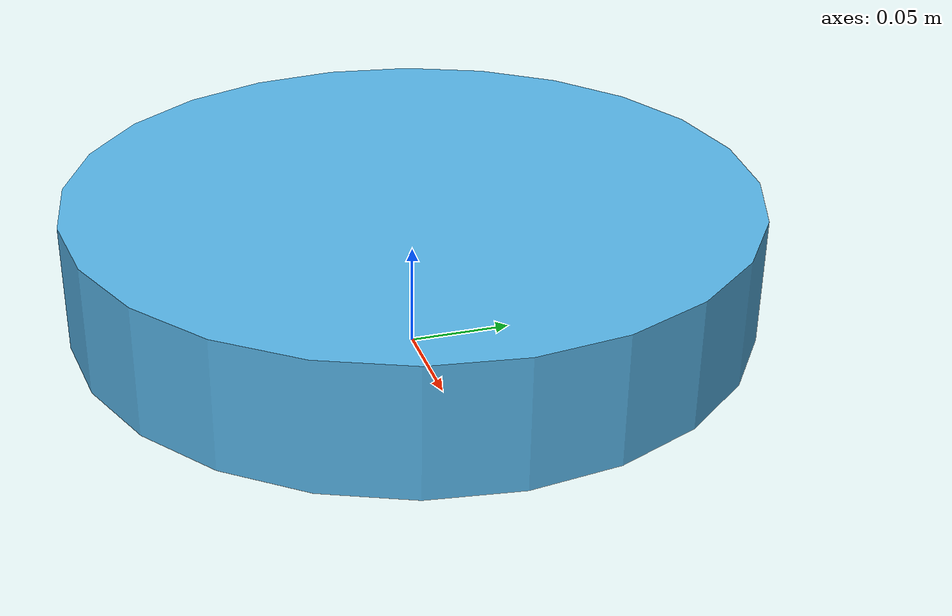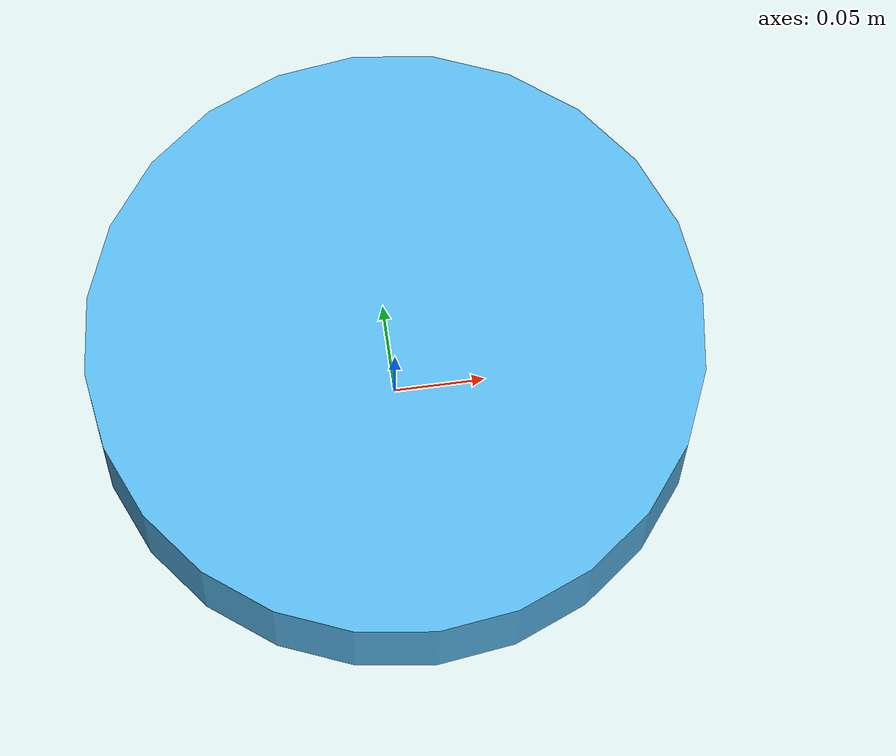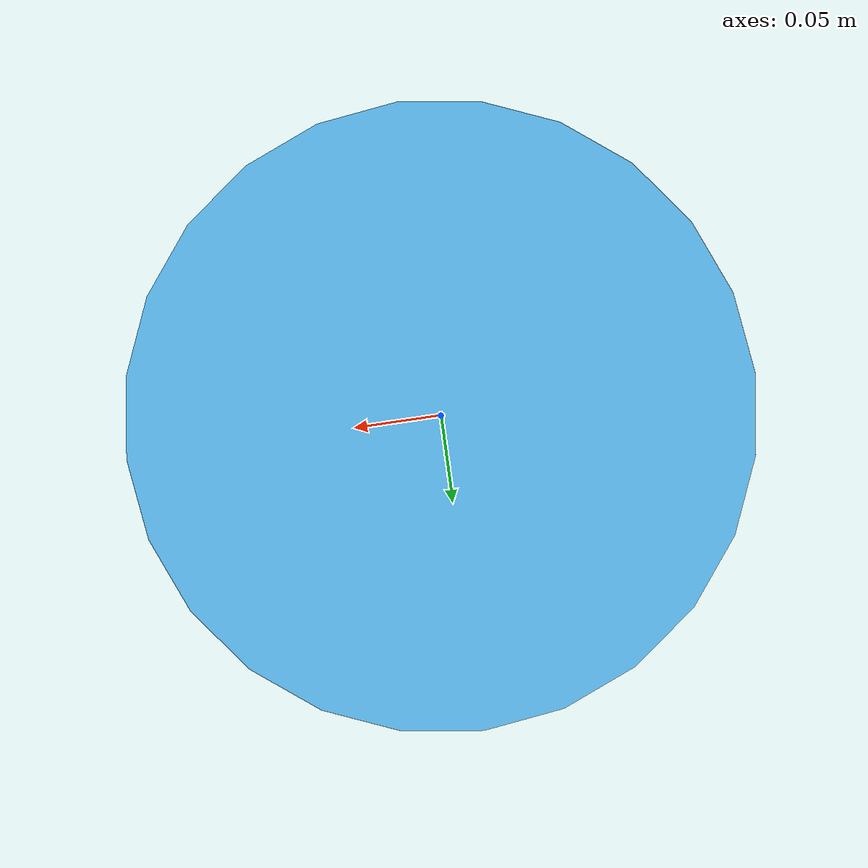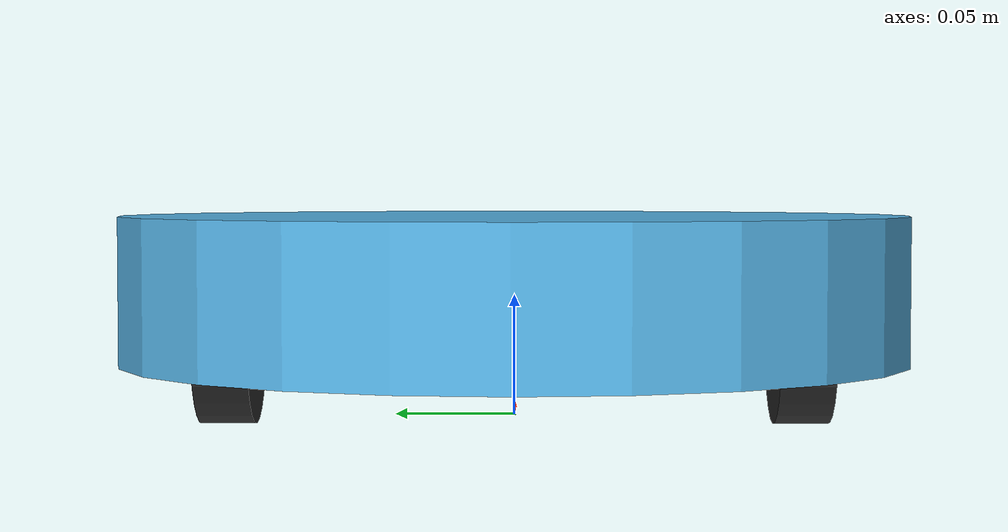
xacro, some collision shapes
<?xml version="1.0"?>
<robot name="black_mamba" xmlns:xacro="http://ros.org/wiki/xacro">

	<!-- Robot parameters -->
	<xacro:property name="wheel_radius" value="0.036"/>
	<xacro:property name="wheel_distance" value="0.12"/>

	<material name="DarkGray">
          <color rgba="0.2 0.2 0.2 1.0"/>
    </material>

	<material name="Green">
		<color rgba="0 1 0 0" />
	</material>

	<!-- base_footprint is a fictitious link(frame) that is on the ground right below base_link origin, navigation stack depends on this frame -->
    <link name="base_footprint">
		<visual>
		  <origin xyz="0 0 0" rpy="0 0 0" />
		  <geometry>
			<box size="0.001 0.001 0.001" />
		  </geometry>
		  <material name="Green" />
		</visual>

		<collision>
		  <origin xyz="0 0 0.017" rpy="0 0 0" />
		  <geometry>
			<box size="0.001 0.001 0.001" />
		  </geometry>
		</collision>
		</link>

	<!-- base link, basically the body of the Roomba -->
	<link name="base_link">
		<inertial>
	     		<mass value="4" />
	      		<origin xyz="0 0 0" />
	      		<inertia ixx="0.01" ixy="0.0" ixz="0.0" iyy="0.01" iyz="0.0" izz="0.05" />
	 	</inertial>

		<visual>
			<origin xyz=" 0 0 0.0308" rpy="0 0 0" />
			<geometry>
				<mesh filename="/home/ed/ros2_ws/src/black_mamba/description/meshes/create_2.dae"/>
			</geometry>
		</visual>

		<collision>
			<origin xyz="0.0 0.0 0.0358" rpy="0 0 0" />
			<geometry>
				<cylinder length="0.0611632" radius="0.16495"/>
			</geometry>
		</collision>
	</link>

	<joint name="base_footprint_joint" type="fixed">
		<origin xyz="0 0 0.017" rpy="0 0 0" />
		<parent link="base_footprint"/>
	 	<child link="base_link" />
	</joint>

	<!-- cliff sensors -->
	<link name="left_cliff_sensor_link">
		<inertial>
			<mass value="0.01" />
	  		<origin xyz="0 0 0"/>
	     		<inertia ixx="0.001" ixy="0.0" ixz="0.0" iyy="0.001" iyz="0.0" izz="0.001" />
	   	</inertial>
	</link>

	<link name="right_cliff_sensor_link">
	 	<inertial>
	     		<mass value="0.01" />
	    		<origin xyz="0 0 0"/>
	    		<inertia ixx="0.001" ixy="0.0" ixz="0.0" iyy="0.001" iyz="0.0" izz="0.001" />
	    	</inertial>
	</link>

	<link name="front_left_cliff_sensor_link">
	 	<inertial>
	     		<mass value="0.01" />
	      		<origin xyz="0 0 0"/>
	      		<inertia ixx="1.0" ixy="0.0" ixz="0.0" iyy="0.01" iyz="0.0" izz="0.01" />
	    	</inertial>
	</link>

	 <link name="front_right_cliff_sensor_link">
		<inertial>
	     		<mass value="0.01" />
	      		<origin xyz="0 0 0"/>
	      		<inertia ixx="0.001" ixy="0.0" ixz="0.0" iyy="0.001" iyz="0.0" izz="0.001" />
	    	</inertial>
	</link>

	<joint name="left_sensor_joint" type="fixed">
	  	<origin xyz="0.07 0.14 0.01" rpy="0 1.57079 0" />
	    	<parent link="base_link"/>
	    	<child link="left_cliff_sensor_link" />
	</joint>

	<joint name="right_cliff_sensor_joint" type="fixed">
		<origin xyz="0.07 -0.14 0.01" rpy="0 1.57079 0" />
		<parent link="base_link"/>
	 	<child link="right_cliff_sensor_link" />
	</joint>

	<joint name="front_left_cliff_sensor_joint" type="fixed">
	    	<origin xyz="0.15 0.04 0.01" rpy="0 1.57079 0" />
	    	<parent link="base_link"/>
	    	<child link="front_left_cliff_sensor_link" />
	</joint>

	<joint name="front_right_cliff_sensor_joint" type="fixed">
	    	<origin xyz="0.15 -0.04 0.01" rpy="0 1.57079 0" />
	    	<parent link="base_link"/>
	    	<child link="front_right_cliff_sensor_link" />
	</joint>

	<!-- bumpers -->
	<link name="left_bumper_link">
		<inertial>
	   	<mass value="0.01" />
	      	<origin xyz="0 0 0"/>
	      		<inertia ixx="0.001" ixy="0.0" ixz="0.0" iyy="0.001" iyz="0.0" izz="0.001" />
	    	</inertial>
	</link>

	<link name="right_bumper_link">
		<inertial>
	   	<mass value="0.01" />
	      	<origin xyz="0 0 0"/>
	      		<inertia ixx="0.001" ixy="0.0" ixz="0.0" iyy="0.001" iyz="0.0" izz="0.001" />
	    	</inertial>
	</link>

	<joint name="left_bumper_joint" type="fixed">
	  	<origin xyz="0.115 -0.115 0.042" rpy="0 0 -0.75" />
	    	<parent link="base_link"/>
	    	<child link="left_bumper_link" />
	</joint>

	<joint name="right_bumper_joint" type="fixed">
	  	<origin xyz="0.115 0.115 0.042" rpy="0 0 0.75" />
	    	<parent link="base_link"/>
	    	<child link="right_bumper_link" />
	</joint>

	<!-- wheels and caster wheel -->
	 <link name="left_wheel_link">
		<inertial>
	      		<origin xyz="0 0 0"/>
	      		<mass value="0.01" />
	      		<inertia ixx="0.001" ixy="0.0" ixz="0.0" iyy="0.001" iyz="0.0" izz="0.001" />
	    </inertial>

		<visual>
			<origin xyz="0 0 0" rpy="0 0 0" />
			<geometry>
				<cylinder radius="${wheel_radius}" length = "0.023"/>
			</geometry>
		<material name="DarkGray" />
		</visual>

		<collision>
			<origin xyz="0 0 0" rpy="0 0 0" />
			<geometry>
				<sphere radius="${wheel_radius}"/>
			</geometry>
		</collision>
	</link>

	<joint name="left_wheel_joint" type="continuous">
	 	<origin xyz="0 ${wheel_distance} 0.015" rpy="${-1*pi/2} 0 0"/>
	    	<parent link="base_link"/>
	    	<child link="left_wheel_link"/>
	    	<axis xyz="0 0 1"/>
	  </joint>

	<link name="right_wheel_link">
		<inertial>
			<origin xyz="0 0 0"/>
			<mass value="0.01" />
			<inertia ixx="0.001" ixy="0.0" ixz="0.0" iyy="0.001" iyz="0.0" izz="0.001" />
		</inertial>

		<visual>
			<origin xyz="0 0 0" rpy="0 0 0" />
			<geometry>
				<cylinder radius="${wheel_radius}" length = "0.023"/>
			</geometry>
			<material name="DarkGray" />
		</visual>

	  	<collision>
			<origin xyz="0 0 0" rpy="0 1.5707 1.5707" />
			<geometry>
				<sphere radius="${wheel_radius}"/>
			</geometry>
		</collision>
	</link>

	<joint name="right_wheel_joint" type="continuous">
	  	<origin xyz="0 ${-1*wheel_distance} 0.015" rpy="${1*pi/2} 0 0"/>
		<parent link="base_link"/>
		<child link="right_wheel_link"/>
		<axis xyz="0 0 -1"/>
	</joint>

	<link name="caster_wheel_link">
		<inertial>
			<origin xyz="0 0 0" />
			<mass value="0.072" />
			<inertia ixx="0.001" ixy="0.0" ixz="0.0" iyy="0.001" iyz="0.0" izz="0.001" />
		</inertial>
		<collision>
			<origin xyz="0 0 0" rpy="0 1.5707 1.5707" />
			<geometry>
				<sphere radius="0.018" />
			</geometry>
		</collision>
	</link>

	<joint name="caster_wheel_joint" type="fixed">
	 	<origin xyz="0.12 0 0.0" rpy="0 0 0"/>
		<parent link="base_link"/>
		<child link="caster_wheel_link"/>
		<axis xyz="0 1 0"/>
	</joint>

	<gazebo reference="caster_wheel_link">
		<mu1 value="0.001"/>
		<mu2 value="0.001"/>
	</gazebo>

</robot>
